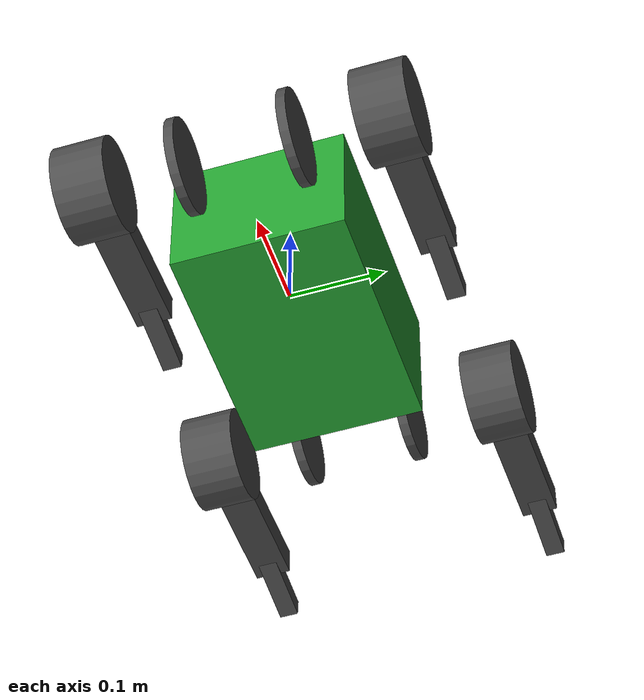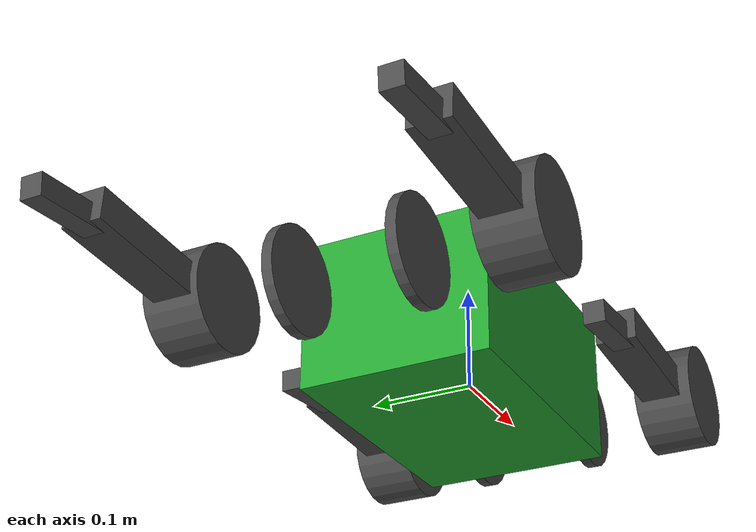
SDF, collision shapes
<sdf version='1.7'>
  <model name='ylo2_description'>
    <link name='body'>
      <inertial>
        <pose>0.0325 0.007369 0.033157 0 -0 0</pose>
        <mass>4.077</mass>
        <inertia>
          <ixx>0.0199227</ixx>
          <ixy>-3.01296e-05</ixy>
          <ixz>-0.000376678</ixz>
          <iyy>0.078297</iyy>
          <iyz>-1.27744e-05</iyz>
          <izz>0.0842236</izz>
        </inertia>
      </inertial>
      <collision name='body_fixed_joint_lump__trunk_collision'>
        <pose>-0.02 0.003 0.024 0 -0 0</pose>
        <geometry>
          <box>
            <size>0.26 0.18 0.14</size>
          </box>
        </geometry>
        <surface>
          <contact>
            <ode>
              <kp>1e+06</kp>
              <kd>1</kd>
            </ode>
          </contact>
          <friction>
            <ode>
              <mu>0.2</mu>
              <mu2>0.2</mu2>
            </ode>
          </friction>
        </surface>
      </collision>
      <collision name='body_fixed_joint_lump__imu_link_collision_1'>
        <pose>0 0 0 0 -0 0</pose>
        <geometry>
          <box>
            <size>0.001 0.001 0.001</size>
          </box>
        </geometry>
        <surface>
          <contact>
            <ode/>
          </contact>
          <friction>
            <ode>
              <mu>0.2</mu>
              <mu2>0.2</mu2>
            </ode>
          </friction>
        </surface>
      </collision>
      <visual name='body_visual'>
        <pose>0 0 0 0 -0 0</pose>
        <geometry>
          <box>
            <size>0.001 0.001 0.001</size>
          </box>
        </geometry>
        <material>
          <script>
            <name>Gazebo/Green</name>
            <uri>file://media/materials/scripts/gazebo.material</uri>
          </script>
        </material>
      </visual>
      <visual name='body_visual_visual_1'>
        <pose>0 0 0 0 -0 0</pose>
        <geometry>
          <mesh>
            <scale>1 1 1</scale>
            <uri>model://ylo2_description/meshes/body/textured/ylo2_textured_body.dae</uri>
          </mesh>
        </geometry>
        <material>
          <script>
            <name>Gazebo/Green</name>
            <uri>file://media/materials/scripts/gazebo.material</uri>
          </script>
        </material>
      </visual>
      <visual name='body_fixed_joint_lump__abad_motors_visual_2'>
        <pose>0 0 0 0 -0 0</pose>
        <geometry>
          <mesh>
            <scale>1 1 1</scale>
            <uri>model://ylo2_description/meshes/body/textured/ylo2_textured_abad_motors.dae</uri>
          </mesh>
        </geometry>
      </visual>
      <visual name='body_fixed_joint_lump__accessories_visual_3'>
        <pose>0 0 0 0 -0 0</pose>
        <geometry>
          <mesh>
            <scale>1 1 1</scale>
            <uri>model://ylo2_description/meshes/body/textured/accessories.dae</uri>
          </mesh>
        </geometry>
      </visual>
      <visual name='body_fixed_joint_lump__battery_visual_4'>
        <pose>0 0 0 0 -0 0</pose>
        <geometry>
          <mesh>
            <scale>1 1 1</scale>
            <uri>model://ylo2_description/meshes/body/battery.stl</uri>
          </mesh>
        </geometry>
      </visual>
      <visual name='body_fixed_joint_lump__covers_visual_5'>
        <pose>0 0 0 0 -0 0</pose>
        <geometry>
          <mesh>
            <scale>1 1 1</scale>
            <uri>model://ylo2_description/meshes/body/textured/ylo2_textured_cover.dae</uri>
          </mesh>
        </geometry>
      </visual>
      <visual name='body_fixed_joint_lump__d435_visual_6'>
        <pose>0 0.003 0 0 -0 0</pose>
        <geometry>
          <mesh>
            <scale>1 1 1</scale>
            <uri>model://ylo2_description/meshes/body/textured/ylo2_d435_textured.dae</uri>
          </mesh>
        </geometry>
      </visual>
      <visual name='body_fixed_joint_lump__imu_link_visual_7'>
        <pose>0 0 0 0 -0 0</pose>
        <geometry>
          <box>
            <size>0.001 0.001 0.001</size>
          </box>
        </geometry>
        <material>
          <script>
            <name>Gazebo/Red</name>
            <uri>file://media/materials/scripts/gazebo.material</uri>
          </script>
        </material>
      </visual>
      <visual name='body_fixed_joint_lump__t265_visual_8'>
        <pose>0.002 0.0025 0 0 -0 0</pose>
        <geometry>
          <mesh>
            <scale>1 1.06 1.04</scale>
            <uri>model://ylo2_description/meshes/body/textured/ylo2_t265_textured.dae</uri>
          </mesh>
        </geometry>
      </visual>
      <gravity>1</gravity>
      <gravity>1</gravity>
      <sensor name='imu_sensor' type='imu'>
        <always_on>1</always_on>
        <update_rate>1000</update_rate>
        <visualize>1</visualize>
        <topic>__default_topic__</topic>
        <plugin name='imu_plugin' filename='libgazebo_ros_imu_sensor.so'>
          <topicName>trunk_imu</topicName>
          <bodyName>imu_link</bodyName>
          <updateRateHZ>1000.0</updateRateHZ>
          <gaussianNoise>0.0</gaussianNoise>
          <xyzOffset>0 0 0</xyzOffset>
          <rpyOffset>0 0 0</rpyOffset>
          <frameName>imu_link</frameName>
        </plugin>
        <pose>0 0 0 0 -0 0</pose>
      </sensor>
    </link>

    <joint name='10' type='revolute'>
      <pose relative_to='body'>0.1695 -0.052 0.024 0 -0 0</pose>
      <parent>body</parent>
      <child>hip2</child>
      <axis>
        <xyz>1 0 0</xyz>
        <limit>
          <lower>-0.0139626</lower>
          <upper>0.0139626</upper>
          <effort>15</effort>
          <velocity>40</velocity>
        </limit>
        <dynamics>
          <damping>0</damping>
          <friction>0</friction>
          <spring_reference>0</spring_reference>
          <spring_stiffness>0</spring_stiffness>
        </dynamics>
      </axis>
    </joint>

    <link name='hip2'>
      <pose relative_to='10'>0 0 0 0 -0 0</pose>
      <inertial>
        <pose>-0.018578 0.010308 0.006899 0 -0 0</pose>
        <mass>0.552</mass>
        <inertia>
          <ixx>0.00043998</ixx>
          <ixy>4.63e-06</ixy>
          <ixz>-2.717e-05</ixz>
          <iyy>0.0007018</iyy>
          <iyz>4.63e-06</iyz>
          <izz>0.00043986</izz>
        </inertia>
      </inertial>
      <collision name='hip2_collision_collision'>
        <pose>0 0 0 1.5708 -0 0</pose>
        <geometry>
          <cylinder>
            <length>0.0099</length>
            <radius>0.05</radius>
          </cylinder>
        </geometry>
        <surface>
          <contact>
            <ode/>
          </contact>
          <friction>
            <ode>
              <mu>0.2</mu>
              <mu2>0.2</mu2>
            </ode>
          </friction>
        </surface>
      </collision>
      <collision name='hip2_fixed_joint_lump__thigh_shoulder2_collision_1'>
        <pose>0 -0.096 0 1.5708 -0 0</pose>
        <geometry>
          <cylinder>
            <length>0.0553</length>
            <radius>0.05</radius>
          </cylinder>
        </geometry>
      </collision>
      <visual name='hip2_visual_visual'>
        <pose>-0.055 0 0 3.14159 -0 0</pose>
        <geometry>
          <mesh>
            <scale>1 1 1</scale>
            <uri>model://ylo2_description/meshes/leg/textured/ylo2texturedhip.dae</uri>
          </mesh>
        </geometry>
        <material>
          <script>
            <name>Gazebo/DarkGrey</name>
            <uri>file://media/materials/scripts/gazebo.material</uri>
          </script>
        </material>
      </visual>
    </link>

    <joint name='4' type='revolute'>
      <pose relative_to='hip2'>0 -0.02 0 0 1.5708 0</pose>
      <parent>hip2</parent>
      <child>upper2</child>
      <axis>
        <xyz>0 -1 0</xyz>
        <limit>
          <lower>-6.28319</lower>
          <upper>6.28319</upper>
          <effort>15</effort>
          <velocity>40</velocity>
        </limit>
        <dynamics>
          <damping>0</damping>
          <friction>0</friction>
          <spring_reference>0</spring_reference>
          <spring_stiffness>0</spring_stiffness>
        </dynamics>
      </axis>
    </joint>

    <link name='upper2'>
      <pose relative_to='4'>0 0 0 0 -0 0</pose>
      <inertial>
        <pose>0.014547 -0.066943 -0.04581 0 -0 0</pose>
        <mass>1.009</mass>
        <inertia>
          <ixx>0.0057361</ixx>
          <ixy>-1.51e-05</ixy>
          <ixz>0.00039092</ixz>
          <iyy>0.00562867</iyy>
          <iyz>3.266e-05</iyz>
          <izz>0.00096304</izz>
        </inertia>
      </inertial>
      <collision name='upper2_collision'>
        <pose>0 -0.074 -0.07 3.14159 1.5208 3.14159</pose>
        <geometry>
          <box>
            <size>0.201 0.0374 0.03</size>
          </box>
        </geometry>
        <surface>
          <contact>
            <ode>
              <kp>1e+06</kp>
              <kd>1</kd>
            </ode>
          </contact>
          <friction>
            <ode>
              <mu>0.2</mu>
              <mu2>0.2</mu2>
            </ode>
          </friction>
        </surface>
      </collision>
      <visual name='upper2_visual_visual'>
        <pose>0 0 0 0 -0 0</pose>
        <geometry>
          <mesh>
            <scale>1 -1 1</scale>
            <uri>model://ylo2_description/meshes/leg/textured/ylo2_textured_upper_leg.dae</uri>
          </mesh>
        </geometry>
        <material>
          <script>
            <name>Gazebo/DarkGrey</name>
            <uri>file://media/materials/scripts/gazebo.material</uri>
          </script>
        </material>
      </visual>
      <self_collide>0</self_collide>
    </link>

    <joint name='5' type='revolute'>
      <pose relative_to='upper2'>-0.001 -0.075 -0.215 3.14159 -0 3.14159</pose>
      <parent>upper2</parent>
      <child>lower2</child>
      <axis>
        <xyz>0 1 0</xyz>
        <limit>
          <lower>-6.28319</lower>
          <upper>6.28319</upper>
          <effort>45</effort>
          <velocity>13.33</velocity>
        </limit>
        <dynamics>
          <damping>0</damping>
          <friction>0</friction>
          <spring_reference>0</spring_reference>
          <spring_stiffness>0</spring_stiffness>
        </dynamics>
      </axis>
    </joint>

    <link name='lower2'>
      <pose relative_to='5'>0 0 0 0 -0 0</pose>
      <inertial>
        <pose>0.001729 0.000369 -0.080723 0 -0 0</pose>
        <mass>0.27</mass>
        <inertia>
          <ixx>0.00156258</ixx>
          <ixy>-2.56229e-08</ixy>
          <ixz>2.51039e-05</ixz>
          <iyy>0.00158049</iyy>
          <iyz>-2.21281e-06</iyz>
          <izz>5.72471e-05</izz>
        </inertia>
      </inertial>
      <collision name='lower2_collision'>
        <pose>0 0 -0.08 0 1.4708 0</pose>
        <geometry>
          <box>
            <size>0.19 0.02 0.02</size>
          </box>
        </geometry>
        <surface>
          <contact>
            <ode/>
          </contact>
          <friction>
            <ode>
              <mu>0.2</mu>
              <mu2>0.2</mu2>
            </ode>
          </friction>
        </surface>
      </collision>
      <collision name='lower2_fixed_joint_lump__toe2_collision_collision_1'>
        <pose>0 0 -0.21 0 -0 0</pose>
        <geometry>
          <sphere>
            <radius>0.022</radius>
          </sphere>
        </geometry>
        <surface>
          <contact>
            <ode>
              <kp>1e+06</kp>
              <kd>1</kd>
            </ode>
          </contact>
          <friction>
            <ode>
              <mu>0.6</mu>
              <mu2>0.6</mu2>
            </ode>
          </friction>
        </surface>
      </collision>
      <visual name='lower2_visual_visual'>
        <pose>0 0 0 0 -0 0</pose>
        <geometry>
          <mesh>
            <scale>1 1 1</scale>
            <uri>model://ylo2_description/meshes/leg/textured/lower_leg.dae</uri>
          </mesh>
        </geometry>
      </visual>
      <visual name='lower2_fixed_joint_lump__toe2_visual_visual_1'>
        <pose>0.009 0 -0.161 0 -0 0</pose>
        <geometry>
          <mesh>
            <scale>1 1 1</scale>
            <uri>model://ylo2_description/meshes/leg/fl_foot.dae</uri>
          </mesh>
        </geometry>
        <material>
          <script>
            <name>Gazebo/DarkGrey</name>
            <uri>file://media/materials/scripts/gazebo.material</uri>
          </script>
        </material>
      </visual>
      <self_collide>0</self_collide>
      <sensor name='toe2_contact' type='contact'>
        <plugin name='toe2_plugin' filename='libgazebo_ros_bumper.so'>
          <alwaysOn>1</alwaysOn>
          <updateRate>500</updateRate>
          <bumperTopicName>gazebo/toe2_contact_state</bumperTopicName>
          <frameName>world</frameName>
        </plugin>
        <contact>
          <collision>lower2_collision_toe2</collision>
          <topic>__default_topic__</topic>
        </contact>
        <update_rate>500</update_rate>
        <pose>0 0 -0.23 0 -0 0</pose>
      </sensor>
      <self_collide>0</self_collide>
    </link>

    <joint name='11' type='revolute'>
      <pose relative_to='body'>-0.2095 -0.052 0.024 0 -0 0</pose>
      <parent>body</parent>
      <child>hip3</child>
      <axis>
        <xyz>1 0 0</xyz>
        <limit>
          <lower>-0.0139626</lower>
          <upper>0.0139626</upper>
          <effort>15</effort>
          <velocity>40</velocity>
        </limit>
        <dynamics>
          <damping>0</damping>
          <friction>0</friction>
          <spring_reference>0</spring_reference>
          <spring_stiffness>0</spring_stiffness>
        </dynamics>
      </axis>
    </joint>

    <link name='hip3'>
      <pose relative_to='11'>0 0 0 0 -0 0</pose>
      <inertial>
        <pose>0.018578 0.010308 0.006899 0 -0 0</pose>
        <mass>0.552</mass>
        <inertia>
          <ixx>0.00043998</ixx>
          <ixy>-4.63e-06</ixy>
          <ixz>2.717e-05</ixz>
          <iyy>0.0007018</iyy>
          <iyz>4.63e-06</iyz>
          <izz>0.00043986</izz>
        </inertia>
      </inertial>
      <collision name='hip3_collision_collision'>
        <pose>0 0 0 1.5708 -0 0</pose>
        <geometry>
          <cylinder>
            <length>0.0099</length>
            <radius>0.05</radius>
          </cylinder>
        </geometry>
        <surface>
          <contact>
            <ode/>
          </contact>
          <friction>
            <ode>
              <mu>0.2</mu>
              <mu2>0.2</mu2>
            </ode>
          </friction>
        </surface>
      </collision>
      <collision name='hip3_fixed_joint_lump__thigh_shoulder3_collision_1'>
        <pose>0 -0.096 0 1.5708 -0 0</pose>
        <geometry>
          <cylinder>
            <length>0.0553</length>
            <radius>0.05</radius>
          </cylinder>
        </geometry>
      </collision>
      <visual name='hip3_visual_visual'>
        <pose>0.055 0 0 -0 0 3.14159</pose>
        <geometry>
          <mesh>
            <scale>1 1 1</scale>
            <uri>model://ylo2_description/meshes/leg/textured/ylo2texturedhip.dae</uri>
          </mesh>
        </geometry>
        <material>
          <script>
            <name>Gazebo/DarkGrey</name>
            <uri>file://media/materials/scripts/gazebo.material</uri>
          </script>
        </material>
      </visual>
    </link>

    <joint name='6' type='revolute'>
      <pose relative_to='hip3'>0 -0.02 0 0 1.5708 0</pose>
      <parent>hip3</parent>
      <child>upper3</child>
      <axis>
        <xyz>0 -1 0</xyz>
        <limit>
          <lower>-6.28319</lower>
          <upper>6.28319</upper>
          <effort>15</effort>
          <velocity>40</velocity>
        </limit>
        <dynamics>
          <damping>0</damping>
          <friction>0</friction>
          <spring_reference>0</spring_reference>
          <spring_stiffness>0</spring_stiffness>
        </dynamics>
      </axis>
    </joint>

    <link name='upper3'>
      <pose relative_to='6'>0 0 0 0 -0 0</pose>
      <inertial>
        <pose>0.014547 -0.066943 -0.04581 0 -0 0</pose>
        <mass>1.009</mass>
        <inertia>
          <ixx>0.0057361</ixx>
          <ixy>-1.51e-05</ixy>
          <ixz>0.00039092</ixz>
          <iyy>0.00562867</iyy>
          <iyz>3.266e-05</iyz>
          <izz>0.00096304</izz>
        </inertia>
      </inertial>
      <collision name='upper3_collision'>
        <pose>0 -0.074 -0.07 3.14159 1.5208 3.14159</pose>
        <geometry>
          <box>
            <size>0.201 0.0374 0.03</size>
          </box>
        </geometry>
        <surface>
          <contact>
            <ode>
              <kp>1e+06</kp>
              <kd>1</kd>
            </ode>
          </contact>
          <friction>
            <ode>
              <mu>0.2</mu>
              <mu2>0.2</mu2>
            </ode>
          </friction>
        </surface>
      </collision>
      <visual name='upper3_visual_visual'>
        <pose>0 0 0 0 -0 0</pose>
        <geometry>
          <mesh>
            <scale>1 -1 1</scale>
            <uri>model://ylo2_description/meshes/leg/textured/ylo2_textured_upper_leg.dae</uri>
          </mesh>
        </geometry>
        <material>
          <script>
            <name>Gazebo/DarkGrey</name>
            <uri>file://media/materials/scripts/gazebo.material</uri>
          </script>
        </material>
      </visual>
      <self_collide>0</self_collide>
    </link>

    <joint name='7' type='revolute'>
      <pose relative_to='upper3'>-0.001 -0.075 -0.215 3.14159 -0 3.14159</pose>
      <parent>upper3</parent>
      <child>lower3</child>
      <axis>
        <xyz>0 1 0</xyz>
        <limit>
          <lower>-6.28319</lower>
          <upper>6.28319</upper>
          <effort>45</effort>
          <velocity>13.33</velocity>
        </limit>
        <dynamics>
          <damping>0</damping>
          <friction>0</friction>
          <spring_reference>0</spring_reference>
          <spring_stiffness>0</spring_stiffness>
        </dynamics>
      </axis>
    </joint>

    <link name='lower3'>
      <pose relative_to='7'>0 0 0 0 -0 0</pose>
      <inertial>
        <pose>0.001729 0.000369 -0.080723 0 -0 0</pose>
        <mass>0.27</mass>
        <inertia>
          <ixx>0.00156258</ixx>
          <ixy>-2.56229e-08</ixy>
          <ixz>2.51039e-05</ixz>
          <iyy>0.00158049</iyy>
          <iyz>-2.21281e-06</iyz>
          <izz>5.72471e-05</izz>
        </inertia>
      </inertial>
      <collision name='lower3_collision'>
        <pose>0 0 -0.08 0 1.4708 0</pose>
        <geometry>
          <box>
            <size>0.19 0.02 0.02</size>
          </box>
        </geometry>
        <surface>
          <contact>
            <ode/>
          </contact>
          <friction>
            <ode>
              <mu>0.2</mu>
              <mu2>0.2</mu2>
            </ode>
          </friction>
        </surface>
      </collision>
      <collision name='lower3_fixed_joint_lump__toe3_collision_collision_1'>
        <pose>0 0 -0.21 0 -0 0</pose>
        <geometry>
          <sphere>
            <radius>0.022</radius>
          </sphere>
        </geometry>
        <surface>
          <contact>
            <ode>
              <kp>1e+06</kp>
              <kd>1</kd>
            </ode>
          </contact>
          <friction>
            <ode>
              <mu>0.6</mu>
              <mu2>0.6</mu2>
            </ode>
          </friction>
        </surface>
      </collision>
      <visual name='lower3_visual_visual'>
        <pose>0 0 0 0 -0 0</pose>
        <geometry>
          <mesh>
            <scale>1 1 1</scale>
            <uri>model://ylo2_description/meshes/leg/textured/lower_leg.dae</uri>
          </mesh>
        </geometry>
      </visual>
      <visual name='lower3_fixed_joint_lump__toe3_visual_visual_1'>
        <pose>0.009 0 -0.161 0 -0 0</pose>
        <geometry>
          <mesh>
            <scale>1 1 1</scale>
            <uri>model://ylo2_description/meshes/leg/fl_foot.dae</uri>
          </mesh>
        </geometry>
        <material>
          <script>
            <name>Gazebo/DarkGrey</name>
            <uri>file://media/materials/scripts/gazebo.material</uri>
          </script>
        </material>
      </visual>
      <self_collide>0</self_collide>
      <sensor name='toe3_contact' type='contact'>
        <plugin name='toe3_plugin' filename='libgazebo_ros_bumper.so'>
          <alwaysOn>1</alwaysOn>
          <updateRate>500</updateRate>
          <bumperTopicName>gazebo/toe3_contact_state</bumperTopicName>
          <frameName>world</frameName>
        </plugin>
        <contact>
          <collision>lower3_collision_toe3</collision>
          <topic>__default_topic__</topic>
        </contact>
        <update_rate>500</update_rate>
        <pose>0 0 -0.23 0 -0 0</pose>
      </sensor>
      <self_collide>0</self_collide>
    </link>

    <joint name='8' type='revolute'>
      <pose relative_to='body'>0.1695 0.063 0.024 0 -0 0</pose>
      <parent>body</parent>
      <child>hip0</child>
      <axis>
        <xyz>1 0 0</xyz>
        <limit>
          <lower>-0.0139626</lower>
          <upper>0.0139626</upper>
          <effort>15</effort>
          <velocity>40</velocity>
        </limit>
        <dynamics>
          <damping>0</damping>
          <friction>0</friction>
          <spring_reference>0</spring_reference>
          <spring_stiffness>0</spring_stiffness>
        </dynamics>
      </axis>
    </joint>

    <link name='hip0'>
      <pose relative_to='8'>0 0 0 0 -0 0</pose>
      <inertial>
        <pose>-0.018578 -0.010308 0.006899 0 -0 0</pose>
        <mass>0.552</mass>
        <inertia>
          <ixx>0.00043998</ixx>
          <ixy>-4.63e-06</ixy>
          <ixz>-2.717e-05</ixz>
          <iyy>0.0007018</iyy>
          <iyz>-4.63e-06</iyz>
          <izz>0.00043986</izz>
        </inertia>
      </inertial>
      <collision name='hip0_collision_collision'>
        <pose>0 0 0 1.5708 -0 0</pose>
        <geometry>
          <cylinder>
            <length>0.0099</length>
            <radius>0.05</radius>
          </cylinder>
        </geometry>
        <surface>
          <contact>
            <ode/>
          </contact>
          <friction>
            <ode>
              <mu>0.2</mu>
              <mu2>0.2</mu2>
            </ode>
          </friction>
        </surface>
      </collision>
      <collision name='hip0_fixed_joint_lump__thigh_shoulder0_collision_1'>
        <pose>0 0.096 0 1.5708 -0 0</pose>
        <geometry>
          <cylinder>
            <length>0.0553</length>
            <radius>0.05</radius>
          </cylinder>
        </geometry>
      </collision>
      <visual name='hip0_visual_visual'>
        <pose>-0.055 0 0 0 -0 0</pose>
        <geometry>
          <mesh>
            <scale>1 1 1</scale>
            <uri>model://ylo2_description/meshes/leg/textured/ylo2texturedhip.dae</uri>
          </mesh>
        </geometry>
        <material>
          <script>
            <name>Gazebo/DarkGrey</name>
            <uri>file://media/materials/scripts/gazebo.material</uri>
          </script>
        </material>
      </visual>
    </link>

    <joint name='0' type='revolute'>
      <pose relative_to='hip0'>0 0.02 0 0 1.5708 0</pose>
      <parent>hip0</parent>
      <child>upper0</child>
      <axis>
        <xyz>0 -1 0</xyz>
        <limit>
          <lower>-6.28319</lower>
          <upper>6.28319</upper>
          <effort>15</effort>
          <velocity>40</velocity>
        </limit>
        <dynamics>
          <damping>0</damping>
          <friction>0</friction>
          <spring_reference>0</spring_reference>
          <spring_stiffness>0</spring_stiffness>
        </dynamics>
      </axis>
    </joint>

    <link name='upper0'>
      <pose relative_to='0'>0 0 0 0 -0 0</pose>
      <inertial>
        <pose>0.014547 0.066943 -0.04581 0 -0 0</pose>
        <mass>1.009</mass>
        <inertia>
          <ixx>0.0057361</ixx>
          <ixy>1.51e-05</ixy>
          <ixz>0.00039092</ixz>
          <iyy>0.00562867</iyy>
          <iyz>-3.266e-05</iyz>
          <izz>0.00096304</izz>
        </inertia>
      </inertial>
      <collision name='upper0_collision'>
        <pose>0 0.074 -0.07 3.14159 1.5208 3.14159</pose>
        <geometry>
          <box>
            <size>0.201 0.0374 0.03</size>
          </box>
        </geometry>
        <surface>
          <contact>
            <ode>
              <kp>1e+06</kp>
              <kd>1</kd>
            </ode>
          </contact>
          <friction>
            <ode>
              <mu>0.2</mu>
              <mu2>0.2</mu2>
            </ode>
          </friction>
        </surface>
      </collision>
      <visual name='upper0_visual_visual'>
        <pose>0 0 0 0 -0 0</pose>
        <geometry>
          <mesh>
            <scale>1 1 1</scale>
            <uri>model://ylo2_description/meshes/leg/textured/ylo2_textured_upper_leg.dae</uri>
          </mesh>
        </geometry>
        <material>
          <script>
            <name>Gazebo/DarkGrey</name>
            <uri>file://media/materials/scripts/gazebo.material</uri>
          </script>
        </material>
      </visual>
      <self_collide>0</self_collide>
    </link>

    <joint name='1' type='revolute'>
      <pose relative_to='upper0'>-0.001 0.075 -0.215 3.14159 -0 3.14159</pose>
      <parent>upper0</parent>
      <child>lower0</child>
      <axis>
        <xyz>0 1 0</xyz>
        <limit>
          <lower>-6.28319</lower>
          <upper>6.28319</upper>
          <effort>45</effort>
          <velocity>13.33</velocity>
        </limit>
        <dynamics>
          <damping>0</damping>
          <friction>0</friction>
          <spring_reference>0</spring_reference>
          <spring_stiffness>0</spring_stiffness>
        </dynamics>
      </axis>
    </joint>

    <link name='lower0'>
      <pose relative_to='1'>0 0 0 0 -0 0</pose>
      <inertial>
        <pose>0.001729 0.000369 -0.080723 0 -0 0</pose>
        <mass>0.27</mass>
        <inertia>
          <ixx>0.00156258</ixx>
          <ixy>-2.56229e-08</ixy>
          <ixz>2.51039e-05</ixz>
          <iyy>0.00158049</iyy>
          <iyz>-2.21281e-06</iyz>
          <izz>5.72471e-05</izz>
        </inertia>
      </inertial>
      <collision name='lower0_collision'>
        <pose>0 0 -0.08 0 1.4708 0</pose>
        <geometry>
          <box>
            <size>0.19 0.02 0.02</size>
          </box>
        </geometry>
        <surface>
          <contact>
            <ode/>
          </contact>
          <friction>
            <ode>
              <mu>0.2</mu>
              <mu2>0.2</mu2>
            </ode>
          </friction>
        </surface>
      </collision>
      <collision name='lower0_fixed_joint_lump__toe0_collision_collision_1'>
        <pose>0 0 -0.21 0 -0 0</pose>
        <geometry>
          <sphere>
            <radius>0.022</radius>
          </sphere>
        </geometry>
        <surface>
          <contact>
            <ode>
              <kp>1e+06</kp>
              <kd>1</kd>
            </ode>
          </contact>
          <friction>
            <ode>
              <mu>0.6</mu>
              <mu2>0.6</mu2>
            </ode>
          </friction>
        </surface>
      </collision>
      <visual name='lower0_visual_visual'>
        <pose>0 0 0 0 -0 0</pose>
        <geometry>
          <mesh>
            <scale>1 1 1</scale>
            <uri>model://ylo2_description/meshes/leg/textured/lower_leg.dae</uri>
          </mesh>
        </geometry>
      </visual>
      <visual name='lower0_fixed_joint_lump__toe0_visual_visual_1'>
        <pose>0.009 0.002 -0.161 0 -0 0</pose>
        <geometry>
          <mesh>
            <scale>1 1 1</scale>
            <uri>model://ylo2_description/meshes/leg/fl_foot.dae</uri>
          </mesh>
        </geometry>
        <material>
          <script>
            <name>Gazebo/DarkGrey</name>
            <uri>file://media/materials/scripts/gazebo.material</uri>
          </script>
        </material>
      </visual>
      <self_collide>0</self_collide>
      <sensor name='toe0_contact' type='contact'>
        <plugin name='toe0_plugin' filename='libgazebo_ros_bumper.so'>
          <alwaysOn>1</alwaysOn>
          <updateRate>500</updateRate>
          <bumperTopicName>gazebo/toe0_contact_state</bumperTopicName>
          <frameName>world</frameName>
        </plugin>
        <contact>
          <collision>lower0_collision_toe0</collision>
          <topic>__default_topic__</topic>
        </contact>
        <update_rate>500</update_rate>
        <pose>0 0 -0.23 0 -0 0</pose>
      </sensor>
      <self_collide>0</self_collide>
    </link>

    <joint name='9' type='revolute'>
      <pose relative_to='body'>-0.2095 0.063 0.024 0 -0 0</pose>
      <parent>body</parent>
      <child>hip1</child>
      <axis>
        <xyz>1 0 0</xyz>
        <limit>
          <lower>-0.0139626</lower>
          <upper>0.0139626</upper>
          <effort>15</effort>
          <velocity>40</velocity>
        </limit>
        <dynamics>
          <damping>0</damping>
          <friction>0</friction>
          <spring_reference>0</spring_reference>
          <spring_stiffness>0</spring_stiffness>
        </dynamics>
      </axis>
    </joint>

    <link name='hip1'>
      <pose relative_to='9'>0 0 0 0 -0 0</pose>
      <inertial>
        <pose>0.018578 -0.010308 0.006899 0 -0 0</pose>
        <mass>0.552</mass>
        <inertia>
          <ixx>0.00043998</ixx>
          <ixy>4.63e-06</ixy>
          <ixz>2.717e-05</ixz>
          <iyy>0.0007018</iyy>
          <iyz>-4.63e-06</iyz>
          <izz>0.00043986</izz>
        </inertia>
      </inertial>
      <collision name='hip1_collision_collision'>
        <pose>0 0 0 1.5708 -0 0</pose>
        <geometry>
          <cylinder>
            <length>0.0099</length>
            <radius>0.05</radius>
          </cylinder>
        </geometry>
        <surface>
          <contact>
            <ode/>
          </contact>
          <friction>
            <ode>
              <mu>0.2</mu>
              <mu2>0.2</mu2>
            </ode>
          </friction>
        </surface>
      </collision>
      <collision name='hip1_fixed_joint_lump__thigh_shoulder1_collision_1'>
        <pose>0 0.096 0 1.5708 -0 0</pose>
        <geometry>
          <cylinder>
            <length>0.0553</length>
            <radius>0.05</radius>
          </cylinder>
        </geometry>
      </collision>
      <visual name='hip1_visual_visual'>
        <pose>0.055 0 0 3.14159 0 3.14159</pose>
        <geometry>
          <mesh>
            <scale>1 1 1</scale>
            <uri>model://ylo2_description/meshes/leg/textured/ylo2texturedhip.dae</uri>
          </mesh>
        </geometry>
        <material>
          <script>
            <name>Gazebo/DarkGrey</name>
            <uri>file://media/materials/scripts/gazebo.material</uri>
          </script>
        </material>
      </visual>
    </link>

    <joint name='2' type='revolute'>
      <pose relative_to='hip1'>0 0.02 0 0 1.5708 0</pose>
      <parent>hip1</parent>
      <child>upper1</child>
      <axis>
        <xyz>0 -1 0</xyz>
        <limit>
          <lower>-6.28319</lower>
          <upper>6.28319</upper>
          <effort>15</effort>
          <velocity>40</velocity>
        </limit>
        <dynamics>
          <damping>0</damping>
          <friction>0</friction>
          <spring_reference>0</spring_reference>
          <spring_stiffness>0</spring_stiffness>
        </dynamics>
      </axis>
    </joint>

    <link name='upper1'>
      <pose relative_to='2'>0 0 0 0 -0 0</pose>
      <inertial>
        <pose>0.014547 0.066943 -0.04581 0 -0 0</pose>
        <mass>1.009</mass>
        <inertia>
          <ixx>0.0057361</ixx>
          <ixy>1.51e-05</ixy>
          <ixz>0.00039092</ixz>
          <iyy>0.00562867</iyy>
          <iyz>-3.266e-05</iyz>
          <izz>0.00096304</izz>
        </inertia>
      </inertial>
      <collision name='upper1_collision'>
        <pose>0 0.074 -0.07 3.14159 1.5208 3.14159</pose>
        <geometry>
          <box>
            <size>0.201 0.0374 0.03</size>
          </box>
        </geometry>
        <surface>
          <contact>
            <ode>
              <kp>1e+06</kp>
              <kd>1</kd>
            </ode>
          </contact>
          <friction>
            <ode>
              <mu>0.2</mu>
              <mu2>0.2</mu2>
            </ode>
          </friction>
        </surface>
      </collision>
      <visual name='upper1_visual_visual'>
        <pose>0 0 0 0 -0 0</pose>
        <geometry>
          <mesh>
            <scale>1 1 1</scale>
            <uri>model://ylo2_description/meshes/leg/textured/ylo2_textured_upper_leg.dae</uri>
          </mesh>
        </geometry>
        <material>
          <script>
            <name>Gazebo/DarkGrey</name>
            <uri>file://media/materials/scripts/gazebo.material</uri>
          </script>
        </material>
      </visual>
      <self_collide>0</self_collide>
    </link>

    <joint name='3' type='revolute'>
      <pose relative_to='upper1'>-0.001 0.075 -0.215 3.14159 -0 3.14159</pose>
      <parent>upper1</parent>
      <child>lower1</child>
      <axis>
        <xyz>0 1 0</xyz>
        <limit>
          <lower>-6.28319</lower>
          <upper>6.28319</upper>
          <effort>45</effort>
          <velocity>13.33</velocity>
        </limit>
        <dynamics>
          <damping>0</damping>
          <friction>0</friction>
          <spring_reference>0</spring_reference>
          <spring_stiffness>0</spring_stiffness>
        </dynamics>
      </axis>
    </joint>

    <link name='lower1'>
      <pose relative_to='3'>0 0 0 0 -0 0</pose>
      <inertial>
        <pose>0.001729 0.000369 -0.080723 0 -0 0</pose>
        <mass>0.27</mass>
        <inertia>
          <ixx>0.00156258</ixx>
          <ixy>-2.56229e-08</ixy>
          <ixz>2.51039e-05</ixz>
          <iyy>0.00158049</iyy>
          <iyz>-2.21281e-06</iyz>
          <izz>5.72471e-05</izz>
        </inertia>
      </inertial>
      <collision name='lower1_collision'>
        <pose>0 0 -0.08 0 1.4708 0</pose>
        <geometry>
          <box>
            <size>0.19 0.02 0.02</size>
          </box>
        </geometry>
        <surface>
          <contact>
            <ode/>
          </contact>
          <friction>
            <ode>
              <mu>0.2</mu>
              <mu2>0.2</mu2>
            </ode>
          </friction>
        </surface>
      </collision>
      <collision name='lower1_fixed_joint_lump__toe1_collision_collision_1'>
        <pose>0 0 -0.21 0 -0 0</pose>
        <geometry>
          <sphere>
            <radius>0.022</radius>
          </sphere>
        </geometry>
        <surface>
          <contact>
            <ode>
              <kp>1e+06</kp>
              <kd>1</kd>
            </ode>
          </contact>
          <friction>
            <ode>
              <mu>0.6</mu>
              <mu2>0.6</mu2>
            </ode>
          </friction>
        </surface>
      </collision>
      <visual name='lower1_visual_visual'>
        <pose>0 0 0 0 -0 0</pose>
        <geometry>
          <mesh>
            <scale>1 1 1</scale>
            <uri>model://ylo2_description/meshes/leg/textured/lower_leg.dae</uri>
          </mesh>
        </geometry>
      </visual>
      <visual name='lower1_fixed_joint_lump__toe1_visual_visual_1'>
        <pose>0.009 0.002 -0.161 0 -0 0</pose>
        <geometry>
          <mesh>
            <scale>1 1 1</scale>
            <uri>model://ylo2_description/meshes/leg/fl_foot.dae</uri>
          </mesh>
        </geometry>
        <material>
          <script>
            <name>Gazebo/DarkGrey</name>
            <uri>file://media/materials/scripts/gazebo.material</uri>
          </script>
        </material>
      </visual>
      <self_collide>0</self_collide>
      <sensor name='toe1_contact' type='contact'>
        <plugin name='toe1_plugin' filename='libgazebo_ros_bumper.so'>
          <alwaysOn>1</alwaysOn>
          <updateRate>500</updateRate>
          <bumperTopicName>gazebo/toe1_contact_state</bumperTopicName>
          <frameName>world</frameName>
        </plugin>
        <contact>
          <collision>lower1_collision_toe1</collision>
          <topic>__default_topic__</topic>
        </contact>
        <update_rate>500</update_rate>
        <pose>0 0 -0.23 0 -0 0</pose>
      </sensor>
      <self_collide>0</self_collide>
    </link>

    <plugin name='gazebo_ros_control' filename='libgazebo_ros_control.so'>
      <robotNamespace>/ylo2</robotNamespace>
      <robotSimType>gazebo_ros_control/DefaultRobotHWSim</robotSimType>
    </plugin>
    <plugin name='ground_truth_estimator' filename='libground_truth_estimator.so'>
      <updateRateHZ>500.0</updateRateHZ>
    </plugin>
    <plugin name='gazebo_ros_force' filename='libgazebo_ros_force.so'>
      <topicName>/apply_force/trunk</topicName>
      <bodyName>body</bodyName>
      <xyzOffset>0 0 0</xyzOffset>
      <rpyOffset>0 -0 0</rpyOffset>
    </plugin>
    <frame name='abad_motors_joint' attached_to='trunk'>
      <pose>0 0 0 0 -0 0</pose>
    </frame>
    <frame name='abad_motors' attached_to='abad_motors_joint'/>
    <frame name='accessories_joint' attached_to='trunk'>
      <pose>0 0 0 0 -0 0</pose>
    </frame>
    <frame name='accessories' attached_to='accessories_joint'/>
    <frame name='battery_joint' attached_to='trunk'>
      <pose>0 0 0 0 -0 0</pose>
    </frame>
    <frame name='battery' attached_to='battery_joint'/>
    <frame name='covers_joint' attached_to='trunk'>
      <pose>0 0 0 0 -0 0</pose>
    </frame>
    <frame name='covers' attached_to='covers_joint'/>
    <frame name='d435_joint' attached_to='trunk'>
      <pose>0 0 0 0 -0 0</pose>
    </frame>
    <frame name='d435' attached_to='d435_joint'/>
    <frame name='imu_joint' attached_to='trunk'>
      <pose>0 0 0 0 -0 0</pose>
    </frame>
    <frame name='imu_link' attached_to='imu_joint'/>
    <frame name='t265_joint' attached_to='trunk'>
      <pose>0 0 0 0 -0 0</pose>
    </frame>
    <frame name='t265' attached_to='t265_joint'/>
    <frame name='floating_base' attached_to='body'>
      <pose>0 0 0 0 -0 0</pose>
    </frame>
    <frame name='trunk' attached_to='floating_base'/>
    <frame name='hip2_fixed' attached_to='hip2'>
      <pose>0 -0.096 0 0 -0 0</pose>
    </frame>
    <frame name='thigh_shoulder2' attached_to='hip2_fixed'/>
    <frame name='jtoe2' attached_to='lower2'>
      <pose>0 0 -0.23 0 -0 0</pose>
    </frame>
    <frame name='toe2' attached_to='jtoe2'/>
    <frame name='hip3_fixed' attached_to='hip3'>
      <pose>0 -0.096 0 0 -0 0</pose>
    </frame>
    <frame name='thigh_shoulder3' attached_to='hip3_fixed'/>
    <frame name='jtoe3' attached_to='lower3'>
      <pose>0 0 -0.23 0 -0 0</pose>
    </frame>
    <frame name='toe3' attached_to='jtoe3'/>
    <frame name='hip0_fixed' attached_to='hip0'>
      <pose>0 0.096 0 0 -0 0</pose>
    </frame>
    <frame name='thigh_shoulder0' attached_to='hip0_fixed'/>
    <frame name='jtoe0' attached_to='lower0'>
      <pose>0 0 -0.23 0 -0 0</pose>
    </frame>
    <frame name='toe0' attached_to='jtoe0'/>
    <frame name='hip1_fixed' attached_to='hip1'>
      <pose>0 0.096 0 0 -0 0</pose>
    </frame>
    <frame name='thigh_shoulder1' attached_to='hip1_fixed'/>
    <frame name='jtoe1' attached_to='lower1'>
      <pose>0 0 -0.23 0 -0 0</pose>
    </frame>
    <frame name='toe1' attached_to='jtoe1'/>
  </model>
</sdf>
